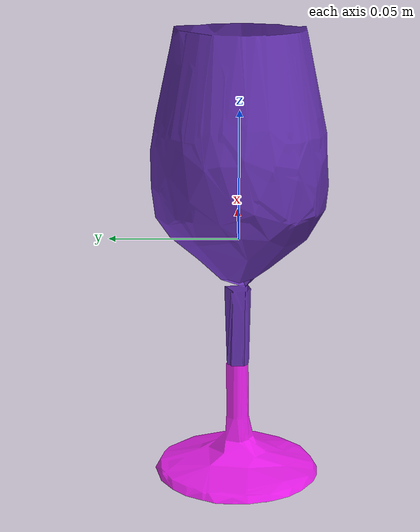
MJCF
<?xml version="1.0" encoding="utf-8"?>
<mujoco model="top_watertight_tiny">

  <asset>

    <mesh file="top_watertight_tiny.obj"/>

    <mesh file="top_watertight_tiny_collision_0.obj"/>

    <mesh file="top_watertight_tiny_collision_1.obj"/>

    <mesh file="top_watertight_tiny_collision_2.obj"/>

    <mesh file="top_watertight_tiny_collision_3.obj"/>

    <mesh file="top_watertight_tiny_collision_4.obj"/>

    <mesh file="top_watertight_tiny_collision_5.obj"/>

    <mesh file="top_watertight_tiny_collision_6.obj"/>

    <mesh file="top_watertight_tiny_collision_7.obj"/>

    <mesh file="top_watertight_tiny_collision_8.obj"/>

    <mesh file="top_watertight_tiny_collision_9.obj"/>

    <mesh file="top_watertight_tiny_collision_10.obj"/>

    <mesh file="top_watertight_tiny_collision_11.obj"/>

    <mesh file="top_watertight_tiny_collision_12.obj"/>

    <mesh file="top_watertight_tiny_collision_13.obj"/>

    <mesh file="top_watertight_tiny_collision_14.obj"/>

    <mesh file="top_watertight_tiny_collision_15.obj"/>

    <mesh file="top_watertight_tiny_collision_16.obj"/>

    <mesh file="top_watertight_tiny_collision_17.obj"/>

    <mesh file="top_watertight_tiny_collision_18.obj"/>

    <mesh file="top_watertight_tiny_collision_19.obj"/>

    <mesh file="top_watertight_tiny_collision_20.obj"/>

    <mesh file="top_watertight_tiny_collision_21.obj"/>

    <mesh file="top_watertight_tiny_collision_22.obj"/>

    <mesh file="top_watertight_tiny_collision_23.obj"/>

    <mesh file="top_watertight_tiny_collision_24.obj"/>

    <mesh file="top_watertight_tiny_collision_25.obj"/>

    <mesh file="top_watertight_tiny_collision_26.obj"/>

    <mesh file="top_watertight_tiny_collision_27.obj"/>

    <mesh file="top_watertight_tiny_collision_28.obj"/>

    <mesh file="top_watertight_tiny_collision_29.obj"/>

    <mesh file="top_watertight_tiny_collision_30.obj"/>

    <mesh file="top_watertight_tiny_collision_31.obj"/>

    <mesh file="top_watertight_tiny_collision_32.obj"/>

    <mesh file="top_watertight_tiny_collision_33.obj"/>

    <mesh file="top_watertight_tiny_collision_34.obj"/>

    <mesh file="top_watertight_tiny_collision_35.obj"/>

    <mesh file="top_watertight_tiny_collision_36.obj"/>

    <mesh file="top_watertight_tiny_collision_37.obj"/>

    <mesh file="top_watertight_tiny_collision_38.obj"/>

    <mesh file="top_watertight_tiny_collision_39.obj"/>

    <mesh file="top_watertight_tiny_collision_40.obj"/>

    <mesh file="top_watertight_tiny_collision_41.obj"/>

    <mesh file="top_watertight_tiny_collision_42.obj"/>

    <mesh file="top_watertight_tiny_collision_43.obj"/>

    <mesh file="top_watertight_tiny_collision_44.obj"/>

    <mesh file="top_watertight_tiny_collision_45.obj"/>

    <mesh file="top_watertight_tiny_collision_46.obj"/>

    <mesh file="top_watertight_tiny_collision_47.obj"/>

    <mesh file="top_watertight_tiny_collision_48.obj"/>

    <mesh file="top_watertight_tiny_collision_49.obj"/>

    <mesh file="top_watertight_tiny_collision_50.obj"/>

    <mesh file="top_watertight_tiny_collision_51.obj"/>

    <mesh file="bottom_watertight_tiny.obj"/>

    <mesh file="bottom_watertight_tiny_collision_0.obj"/>

    <mesh file="bottom_watertight_tiny_collision_1.obj"/>

    <mesh file="bottom_watertight_tiny_collision_2.obj"/>

    <mesh file="bottom_watertight_tiny_collision_3.obj"/>

    <mesh file="bottom_watertight_tiny_collision_4.obj"/>

    <mesh file="bottom_watertight_tiny_collision_5.obj"/>

    <mesh file="bottom_watertight_tiny_collision_6.obj"/>

    <mesh file="bottom_watertight_tiny_collision_7.obj"/>

    <mesh file="bottom_watertight_tiny_collision_8.obj"/>

    <mesh file="bottom_watertight_tiny_collision_9.obj"/>

    <mesh file="bottom_watertight_tiny_collision_10.obj"/>

    <mesh file="bottom_watertight_tiny_collision_11.obj"/>

    <mesh file="bottom_watertight_tiny_collision_12.obj"/>

    <mesh file="bottom_watertight_tiny_collision_13.obj"/>

    <mesh file="bottom_watertight_tiny_collision_14.obj"/>

    <mesh file="bottom_watertight_tiny_collision_15.obj"/>

    <mesh file="bottom_watertight_tiny_collision_16.obj"/>

    <mesh file="bottom_watertight_tiny_collision_17.obj"/>

    <mesh file="bottom_watertight_tiny_collision_18.obj"/>

    <mesh file="bottom_watertight_tiny_collision_19.obj"/>

    <mesh file="bottom_watertight_tiny_collision_20.obj"/>

    <mesh file="bottom_watertight_tiny_collision_21.obj"/>

    <mesh file="bottom_watertight_tiny_collision_22.obj"/>

    <mesh file="bottom_watertight_tiny_collision_23.obj"/>

    <mesh file="bottom_watertight_tiny_collision_24.obj"/>

    <mesh file="bottom_watertight_tiny_collision_25.obj"/>

    <mesh file="bottom_watertight_tiny_collision_26.obj"/>

    <mesh file="bottom_watertight_tiny_collision_27.obj"/>

    <mesh file="bottom_watertight_tiny_collision_28.obj"/>

    <mesh file="bottom_watertight_tiny_collision_29.obj"/>

    <mesh file="bottom_watertight_tiny_collision_30.obj"/>

    <mesh file="bottom_watertight_tiny_collision_31.obj"/>

    <mesh file="bottom_watertight_tiny_collision_32.obj"/>

    <mesh file="bottom_watertight_tiny_collision_33.obj"/>

    <mesh file="bottom_watertight_tiny_collision_34.obj"/>

    <mesh file="bottom_watertight_tiny_collision_35.obj"/>

    <mesh file="bottom_watertight_tiny_collision_36.obj"/>

    <mesh file="bottom_watertight_tiny_collision_37.obj"/>

    <mesh file="bottom_watertight_tiny_collision_38.obj"/>

    <mesh file="bottom_watertight_tiny_collision_39.obj"/>

    <mesh file="bottom_watertight_tiny_collision_40.obj"/>

    <mesh file="bottom_watertight_tiny_collision_41.obj"/>

    <mesh file="bottom_watertight_tiny_collision_42.obj"/>

    <mesh file="bottom_watertight_tiny_collision_43.obj"/>

    <mesh file="bottom_watertight_tiny_collision_44.obj"/>

    <mesh file="bottom_watertight_tiny_collision_45.obj"/>

    <mesh file="bottom_watertight_tiny_collision_46.obj"/>

    <mesh file="bottom_watertight_tiny_collision_47.obj"/>

    <mesh file="bottom_watertight_tiny_collision_48.obj"/>

    <mesh file="bottom_watertight_tiny_collision_49.obj"/>

    <mesh file="bottom_watertight_tiny_collision_50.obj"/>

    <mesh file="bottom_watertight_tiny_collision_51.obj"/>

    <mesh file="bottom_watertight_tiny_collision_52.obj"/>

    <mesh file="bottom_watertight_tiny_collision_53.obj"/>

    <mesh file="bottom_watertight_tiny_collision_54.obj"/>

    <mesh file="bottom_watertight_tiny_collision_55.obj"/>

    <mesh file="bottom_watertight_tiny_collision_56.obj"/>

    <mesh file="bottom_watertight_tiny_collision_57.obj"/>

    <mesh file="bottom_watertight_tiny_collision_58.obj"/>

    <mesh file="bottom_watertight_tiny_collision_59.obj"/>

    <mesh file="bottom_watertight_tiny_collision_60.obj"/>

    <mesh file="bottom_watertight_tiny_collision_61.obj"/>

    <mesh file="bottom_watertight_tiny_collision_62.obj"/>

    <mesh file="bottom_watertight_tiny_collision_63.obj"/>

    <mesh file="bottom_watertight_tiny_collision_64.obj"/>

    <mesh file="bottom_watertight_tiny_collision_65.obj"/>

  </asset>

  <worldbody>

    <body name="top_watertight_tiny">

      <freejoint/>

      <geom mesh="top_watertight_tiny" group="2" type="mesh" rgba="0.4 0.2 0.7 1" contype="0" conaffinity="0" solimp="0.90 0.95 0.001" solref="0.02 1.0" density="100" friction="0.95 0.4 0.3"/>

      <geom mesh="top_watertight_tiny_collision_0" rgba="0.6904689774517353 0.9890842779499041 0.09949597614255179 1" group="3" type="mesh" solimp="0.90 0.95 0.001" solref="0.02 1.0" density="100" friction="0.95 0.4 0.3"/>

      <geom mesh="top_watertight_tiny_collision_1" rgba="0.20717381249098255 0.18849855824066852 0.24908406799260785 1" group="3" type="mesh" solimp="0.90 0.95 0.001" solref="0.02 1.0" density="100" friction="0.95 0.4 0.3"/>

      <geom mesh="top_watertight_tiny_collision_2" rgba="0.440859379224923 0.9830569270165341 0.36981585510684134 1" group="3" type="mesh" solimp="0.90 0.95 0.001" solref="0.02 1.0" density="100" friction="0.95 0.4 0.3"/>

      <geom mesh="top_watertight_tiny_collision_3" rgba="0.291212882244426 0.09450013191835704 0.7182321906929979 1" group="3" type="mesh" solimp="0.90 0.95 0.001" solref="0.02 1.0" density="100" friction="0.95 0.4 0.3"/>

      <geom mesh="top_watertight_tiny_collision_4" rgba="0.21123881625625773 0.8996467632661002 0.07170441287094398 1" group="3" type="mesh" solimp="0.90 0.95 0.001" solref="0.02 1.0" density="100" friction="0.95 0.4 0.3"/>

      <geom mesh="top_watertight_tiny_collision_5" rgba="0.7135981555732481 0.9014954097794105 0.11325771074249136 1" group="3" type="mesh" solimp="0.90 0.95 0.001" solref="0.02 1.0" density="100" friction="0.95 0.4 0.3"/>

      <geom mesh="top_watertight_tiny_collision_6" rgba="0.7591167061416585 0.3238434258883003 0.7082786691735463 1" group="3" type="mesh" solimp="0.90 0.95 0.001" solref="0.02 1.0" density="100" friction="0.95 0.4 0.3"/>

      <geom mesh="top_watertight_tiny_collision_7" rgba="0.04004939632796911 0.28726323842490586 0.5389506837299923 1" group="3" type="mesh" solimp="0.90 0.95 0.001" solref="0.02 1.0" density="100" friction="0.95 0.4 0.3"/>

      <geom mesh="top_watertight_tiny_collision_8" rgba="0.18368826423979978 0.5944400065796317 0.930681193947245 1" group="3" type="mesh" solimp="0.90 0.95 0.001" solref="0.02 1.0" density="100" friction="0.95 0.4 0.3"/>

      <geom mesh="top_watertight_tiny_collision_9" rgba="0.24048566638288127 0.2293011616281444 0.4521122085611543 1" group="3" type="mesh" solimp="0.90 0.95 0.001" solref="0.02 1.0" density="100" friction="0.95 0.4 0.3"/>

      <geom mesh="top_watertight_tiny_collision_10" rgba="0.6512256286445702 0.42669877651200216 0.3921145363146994 1" group="3" type="mesh" solimp="0.90 0.95 0.001" solref="0.02 1.0" density="100" friction="0.95 0.4 0.3"/>

      <geom mesh="top_watertight_tiny_collision_11" rgba="0.16277900444721904 0.5695508040449854 0.7692021096108951 1" group="3" type="mesh" solimp="0.90 0.95 0.001" solref="0.02 1.0" density="100" friction="0.95 0.4 0.3"/>

      <geom mesh="top_watertight_tiny_collision_12" rgba="0.7158997331469885 0.5149857598872699 0.9976523581776857 1" group="3" type="mesh" solimp="0.90 0.95 0.001" solref="0.02 1.0" density="100" friction="0.95 0.4 0.3"/>

      <geom mesh="top_watertight_tiny_collision_13" rgba="0.15551992363586775 0.3790410827160491 0.5456054320322961 1" group="3" type="mesh" solimp="0.90 0.95 0.001" solref="0.02 1.0" density="100" friction="0.95 0.4 0.3"/>

      <geom mesh="top_watertight_tiny_collision_14" rgba="0.8224079835110917 0.6821161050280695 0.2385056042041458 1" group="3" type="mesh" solimp="0.90 0.95 0.001" solref="0.02 1.0" density="100" friction="0.95 0.4 0.3"/>

      <geom mesh="top_watertight_tiny_collision_15" rgba="0.9296863934149605 0.9984860444341328 0.3481639335018697 1" group="3" type="mesh" solimp="0.90 0.95 0.001" solref="0.02 1.0" density="100" friction="0.95 0.4 0.3"/>

      <geom mesh="top_watertight_tiny_collision_16" rgba="0.24490772738945032 0.31643401161728424 0.6398526459120216 1" group="3" type="mesh" solimp="0.90 0.95 0.001" solref="0.02 1.0" density="100" friction="0.95 0.4 0.3"/>

      <geom mesh="top_watertight_tiny_collision_17" rgba="0.08794449227038448 0.9242495945313735 0.7563222501650175 1" group="3" type="mesh" solimp="0.90 0.95 0.001" solref="0.02 1.0" density="100" friction="0.95 0.4 0.3"/>

      <geom mesh="top_watertight_tiny_collision_18" rgba="0.7550837154238529 0.8367604318344449 0.785682723329208 1" group="3" type="mesh" solimp="0.90 0.95 0.001" solref="0.02 1.0" density="100" friction="0.95 0.4 0.3"/>

      <geom mesh="top_watertight_tiny_collision_19" rgba="0.3702593651986552 0.5649525319418951 0.6951867447934799 1" group="3" type="mesh" solimp="0.90 0.95 0.001" solref="0.02 1.0" density="100" friction="0.95 0.4 0.3"/>

      <geom mesh="top_watertight_tiny_collision_20" rgba="0.5532840347397743 0.5624670803242385 0.27658860449583955 1" group="3" type="mesh" solimp="0.90 0.95 0.001" solref="0.02 1.0" density="100" friction="0.95 0.4 0.3"/>

      <geom mesh="top_watertight_tiny_collision_21" rgba="0.6262297093045662 0.6451839441605068 0.9544950443549879 1" group="3" type="mesh" solimp="0.90 0.95 0.001" solref="0.02 1.0" density="100" friction="0.95 0.4 0.3"/>

      <geom mesh="top_watertight_tiny_collision_22" rgba="0.03630275139534833 0.07433219771691979 0.9260854462874198 1" group="3" type="mesh" solimp="0.90 0.95 0.001" solref="0.02 1.0" density="100" friction="0.95 0.4 0.3"/>

      <geom mesh="top_watertight_tiny_collision_23" rgba="0.4945248157584413 0.2559977848004854 0.9090307564474931 1" group="3" type="mesh" solimp="0.90 0.95 0.001" solref="0.02 1.0" density="100" friction="0.95 0.4 0.3"/>

      <geom mesh="top_watertight_tiny_collision_24" rgba="0.2424732581294783 0.1955964024479977 0.9178515211330457 1" group="3" type="mesh" solimp="0.90 0.95 0.001" solref="0.02 1.0" density="100" friction="0.95 0.4 0.3"/>

      <geom mesh="top_watertight_tiny_collision_25" rgba="0.43058780105960404 0.0964721141225513 0.8410931652334637 1" group="3" type="mesh" solimp="0.90 0.95 0.001" solref="0.02 1.0" density="100" friction="0.95 0.4 0.3"/>

      <geom mesh="top_watertight_tiny_collision_26" rgba="0.5364980899837714 0.9620002418342933 0.5346442291946701 1" group="3" type="mesh" solimp="0.90 0.95 0.001" solref="0.02 1.0" density="100" friction="0.95 0.4 0.3"/>

      <geom mesh="top_watertight_tiny_collision_27" rgba="0.8702204167067742 0.11283553761515286 0.8935103517532219 1" group="3" type="mesh" solimp="0.90 0.95 0.001" solref="0.02 1.0" density="100" friction="0.95 0.4 0.3"/>

      <geom mesh="top_watertight_tiny_collision_28" rgba="0.6800940259561571 0.27017689498009 0.7579429982866561 1" group="3" type="mesh" solimp="0.90 0.95 0.001" solref="0.02 1.0" density="100" friction="0.95 0.4 0.3"/>

      <geom mesh="top_watertight_tiny_collision_29" rgba="0.3730037247971182 0.4464181674580233 0.42621125664929405 1" group="3" type="mesh" solimp="0.90 0.95 0.001" solref="0.02 1.0" density="100" friction="0.95 0.4 0.3"/>

      <geom mesh="top_watertight_tiny_collision_30" rgba="0.3787832087519072 0.5218897918631809 0.5581832773519496 1" group="3" type="mesh" solimp="0.90 0.95 0.001" solref="0.02 1.0" density="100" friction="0.95 0.4 0.3"/>

      <geom mesh="top_watertight_tiny_collision_31" rgba="0.30969358717550066 0.1133592165548617 0.887557750156526 1" group="3" type="mesh" solimp="0.90 0.95 0.001" solref="0.02 1.0" density="100" friction="0.95 0.4 0.3"/>

      <geom mesh="top_watertight_tiny_collision_32" rgba="0.5542964581733533 0.16867086736270154 0.28405763126455574 1" group="3" type="mesh" solimp="0.90 0.95 0.001" solref="0.02 1.0" density="100" friction="0.95 0.4 0.3"/>

      <geom mesh="top_watertight_tiny_collision_33" rgba="0.6975404435265781 0.8786163879153178 0.9617720184524395 1" group="3" type="mesh" solimp="0.90 0.95 0.001" solref="0.02 1.0" density="100" friction="0.95 0.4 0.3"/>

      <geom mesh="top_watertight_tiny_collision_34" rgba="0.7379994263631419 0.8969369989603164 0.8330125683777921 1" group="3" type="mesh" solimp="0.90 0.95 0.001" solref="0.02 1.0" density="100" friction="0.95 0.4 0.3"/>

      <geom mesh="top_watertight_tiny_collision_35" rgba="0.6408112447943736 0.8809250698499326 0.3055939117131984 1" group="3" type="mesh" solimp="0.90 0.95 0.001" solref="0.02 1.0" density="100" friction="0.95 0.4 0.3"/>

      <geom mesh="top_watertight_tiny_collision_36" rgba="0.9581427563081736 0.9963308803059672 0.4289479534283629 1" group="3" type="mesh" solimp="0.90 0.95 0.001" solref="0.02 1.0" density="100" friction="0.95 0.4 0.3"/>

      <geom mesh="top_watertight_tiny_collision_37" rgba="0.18425004595838046 0.3345157422176043 0.4044812439374973 1" group="3" type="mesh" solimp="0.90 0.95 0.001" solref="0.02 1.0" density="100" friction="0.95 0.4 0.3"/>

      <geom mesh="top_watertight_tiny_collision_38" rgba="0.07953034823107785 0.42043172230033643 0.47293426328209875 1" group="3" type="mesh" solimp="0.90 0.95 0.001" solref="0.02 1.0" density="100" friction="0.95 0.4 0.3"/>

      <geom mesh="top_watertight_tiny_collision_39" rgba="0.0191164015221571 0.5485602122953134 0.37781664066464093 1" group="3" type="mesh" solimp="0.90 0.95 0.001" solref="0.02 1.0" density="100" friction="0.95 0.4 0.3"/>

      <geom mesh="top_watertight_tiny_collision_40" rgba="0.5798288326117634 0.8700334817525227 0.16117887036531164 1" group="3" type="mesh" solimp="0.90 0.95 0.001" solref="0.02 1.0" density="100" friction="0.95 0.4 0.3"/>

      <geom mesh="top_watertight_tiny_collision_41" rgba="0.5197662873983837 0.2623361975509999 0.9023706097884123 1" group="3" type="mesh" solimp="0.90 0.95 0.001" solref="0.02 1.0" density="100" friction="0.95 0.4 0.3"/>

      <geom mesh="top_watertight_tiny_collision_42" rgba="0.6325563756334056 0.4297217064963207 0.6912984104312961 1" group="3" type="mesh" solimp="0.90 0.95 0.001" solref="0.02 1.0" density="100" friction="0.95 0.4 0.3"/>

      <geom mesh="top_watertight_tiny_collision_43" rgba="0.5557096606297367 0.39995831573970364 0.5448112443252793 1" group="3" type="mesh" solimp="0.90 0.95 0.001" solref="0.02 1.0" density="100" friction="0.95 0.4 0.3"/>

      <geom mesh="top_watertight_tiny_collision_44" rgba="0.650211947174801 0.8688523328212309 0.9809933425965481 1" group="3" type="mesh" solimp="0.90 0.95 0.001" solref="0.02 1.0" density="100" friction="0.95 0.4 0.3"/>

      <geom mesh="top_watertight_tiny_collision_45" rgba="0.38380259836308595 0.025110086906677043 0.398230777206835 1" group="3" type="mesh" solimp="0.90 0.95 0.001" solref="0.02 1.0" density="100" friction="0.95 0.4 0.3"/>

      <geom mesh="top_watertight_tiny_collision_46" rgba="0.2410766019574434 0.5978889536051465 0.4028412978831627 1" group="3" type="mesh" solimp="0.90 0.95 0.001" solref="0.02 1.0" density="100" friction="0.95 0.4 0.3"/>

      <geom mesh="top_watertight_tiny_collision_47" rgba="0.8559711954619551 0.3058445698990788 0.39048756892749426 1" group="3" type="mesh" solimp="0.90 0.95 0.001" solref="0.02 1.0" density="100" friction="0.95 0.4 0.3"/>

      <geom mesh="top_watertight_tiny_collision_48" rgba="0.31295300952013105 0.9579661183922655 0.1755050288041906 1" group="3" type="mesh" solimp="0.90 0.95 0.001" solref="0.02 1.0" density="100" friction="0.95 0.4 0.3"/>

      <geom mesh="top_watertight_tiny_collision_49" rgba="0.035797642619801895 0.8000821952877026 0.02416966809031229 1" group="3" type="mesh" solimp="0.90 0.95 0.001" solref="0.02 1.0" density="100" friction="0.95 0.4 0.3"/>

      <geom mesh="top_watertight_tiny_collision_50" rgba="0.5276476180759115 0.057094808515037676 0.629926011525558 1" group="3" type="mesh" solimp="0.90 0.95 0.001" solref="0.02 1.0" density="100" friction="0.95 0.4 0.3"/>

      <geom mesh="top_watertight_tiny_collision_51" rgba="0.7782968621714623 0.2124044693784456 0.7989907620067174 1" group="3" type="mesh" solimp="0.90 0.95 0.001" solref="0.02 1.0" density="100" friction="0.95 0.4 0.3"/>

      <body name="bottom_watertight_tiny">

        <geom mesh="bottom_watertight_tiny" group="2" type="mesh" rgba="1 0 1 0.8" contype="0" conaffinity="0" solimp="0.90 0.95 0.001" solref="0.02 1.0" density="100" friction="0.95 0.4 0.3"/>

        <geom mesh="bottom_watertight_tiny_collision_0" rgba="0.9962569477734042 0.8066480682177519 0.6686405924824983 1" group="3" type="mesh" solimp="0.90 0.95 0.001" solref="0.02 1.0" density="100" friction="0.95 0.4 0.3"/>

        <geom mesh="bottom_watertight_tiny_collision_1" rgba="0.31734877190139765 0.1189325287899633 0.20650476783541638 1" group="3" type="mesh" solimp="0.90 0.95 0.001" solref="0.02 1.0" density="100" friction="0.95 0.4 0.3"/>

        <geom mesh="bottom_watertight_tiny_collision_2" rgba="0.8244473662774056 0.24909917485713617 0.5725059873602617 1" group="3" type="mesh" solimp="0.90 0.95 0.001" solref="0.02 1.0" density="100" friction="0.95 0.4 0.3"/>

        <geom mesh="bottom_watertight_tiny_collision_3" rgba="0.07975676630974915 0.15289833414990361 0.45608170503800194 1" group="3" type="mesh" solimp="0.90 0.95 0.001" solref="0.02 1.0" density="100" friction="0.95 0.4 0.3"/>

        <geom mesh="bottom_watertight_tiny_collision_4" rgba="0.6105854151367517 0.4808770557319294 0.39148868037363027 1" group="3" type="mesh" solimp="0.90 0.95 0.001" solref="0.02 1.0" density="100" friction="0.95 0.4 0.3"/>

        <geom mesh="bottom_watertight_tiny_collision_5" rgba="0.29578850074017105 0.34274204501428973 0.9172875214987747 1" group="3" type="mesh" solimp="0.90 0.95 0.001" solref="0.02 1.0" density="100" friction="0.95 0.4 0.3"/>

        <geom mesh="bottom_watertight_tiny_collision_6" rgba="0.7137693915548934 0.8072070049067954 0.10201141113153334 1" group="3" type="mesh" solimp="0.90 0.95 0.001" solref="0.02 1.0" density="100" friction="0.95 0.4 0.3"/>

        <geom mesh="bottom_watertight_tiny_collision_7" rgba="0.8590167273731287 0.2837529832781187 0.3870046545111394 1" group="3" type="mesh" solimp="0.90 0.95 0.001" solref="0.02 1.0" density="100" friction="0.95 0.4 0.3"/>

        <geom mesh="bottom_watertight_tiny_collision_8" rgba="0.9910738082611509 0.7140240299571866 0.4928934836492105 1" group="3" type="mesh" solimp="0.90 0.95 0.001" solref="0.02 1.0" density="100" friction="0.95 0.4 0.3"/>

        <geom mesh="bottom_watertight_tiny_collision_9" rgba="0.7509919515852057 0.22587925291164268 0.8788919992977293 1" group="3" type="mesh" solimp="0.90 0.95 0.001" solref="0.02 1.0" density="100" friction="0.95 0.4 0.3"/>

        <geom mesh="bottom_watertight_tiny_collision_10" rgba="0.14202112231302177 0.5512224120584904 0.9539058577078223 1" group="3" type="mesh" solimp="0.90 0.95 0.001" solref="0.02 1.0" density="100" friction="0.95 0.4 0.3"/>

        <geom mesh="bottom_watertight_tiny_collision_11" rgba="0.1796433926847787 0.9592855538151404 0.0564767290544238 1" group="3" type="mesh" solimp="0.90 0.95 0.001" solref="0.02 1.0" density="100" friction="0.95 0.4 0.3"/>

        <geom mesh="bottom_watertight_tiny_collision_12" rgba="0.8682982871476608 0.466665015111405 0.9577845131828633 1" group="3" type="mesh" solimp="0.90 0.95 0.001" solref="0.02 1.0" density="100" friction="0.95 0.4 0.3"/>

        <geom mesh="bottom_watertight_tiny_collision_13" rgba="0.7429420979316687 0.32736317581196606 0.755398454904709 1" group="3" type="mesh" solimp="0.90 0.95 0.001" solref="0.02 1.0" density="100" friction="0.95 0.4 0.3"/>

        <geom mesh="bottom_watertight_tiny_collision_14" rgba="0.889286735914576 0.2115061489422052 0.1625405540984416 1" group="3" type="mesh" solimp="0.90 0.95 0.001" solref="0.02 1.0" density="100" friction="0.95 0.4 0.3"/>

        <geom mesh="bottom_watertight_tiny_collision_15" rgba="0.7501815050545175 0.816082243830873 0.05033803313266072 1" group="3" type="mesh" solimp="0.90 0.95 0.001" solref="0.02 1.0" density="100" friction="0.95 0.4 0.3"/>

        <geom mesh="bottom_watertight_tiny_collision_16" rgba="0.31211919171273617 0.25238275260032383 0.8787252079018281 1" group="3" type="mesh" solimp="0.90 0.95 0.001" solref="0.02 1.0" density="100" friction="0.95 0.4 0.3"/>

        <geom mesh="bottom_watertight_tiny_collision_17" rgba="0.6902777559402118 0.6875698245865738 0.8370164678009211 1" group="3" type="mesh" solimp="0.90 0.95 0.001" solref="0.02 1.0" density="100" friction="0.95 0.4 0.3"/>

        <geom mesh="bottom_watertight_tiny_collision_18" rgba="0.8062382179214644 0.3819744495373174 0.49715119649704775 1" group="3" type="mesh" solimp="0.90 0.95 0.001" solref="0.02 1.0" density="100" friction="0.95 0.4 0.3"/>

        <geom mesh="bottom_watertight_tiny_collision_19" rgba="0.2697551475335753 0.17241825477202055 0.42419434471182293 1" group="3" type="mesh" solimp="0.90 0.95 0.001" solref="0.02 1.0" density="100" friction="0.95 0.4 0.3"/>

        <geom mesh="bottom_watertight_tiny_collision_20" rgba="0.5119561675881109 0.14263333423500668 0.9560964499554899 1" group="3" type="mesh" solimp="0.90 0.95 0.001" solref="0.02 1.0" density="100" friction="0.95 0.4 0.3"/>

        <geom mesh="bottom_watertight_tiny_collision_21" rgba="0.4112601854735697 0.8983000148000984 0.8808393086380301 1" group="3" type="mesh" solimp="0.90 0.95 0.001" solref="0.02 1.0" density="100" friction="0.95 0.4 0.3"/>

        <geom mesh="bottom_watertight_tiny_collision_22" rgba="0.7133366680025944 0.3553633608942669 0.8218102966300512 1" group="3" type="mesh" solimp="0.90 0.95 0.001" solref="0.02 1.0" density="100" friction="0.95 0.4 0.3"/>

        <geom mesh="bottom_watertight_tiny_collision_23" rgba="0.6603077002391367 0.3326922659328134 0.23593761702297378 1" group="3" type="mesh" solimp="0.90 0.95 0.001" solref="0.02 1.0" density="100" friction="0.95 0.4 0.3"/>

        <geom mesh="bottom_watertight_tiny_collision_24" rgba="0.24789125538950885 0.6509967049502187 0.5068561680628352 1" group="3" type="mesh" solimp="0.90 0.95 0.001" solref="0.02 1.0" density="100" friction="0.95 0.4 0.3"/>

        <geom mesh="bottom_watertight_tiny_collision_25" rgba="0.26876618279193365 0.552272878250663 0.5209657369838778 1" group="3" type="mesh" solimp="0.90 0.95 0.001" solref="0.02 1.0" density="100" friction="0.95 0.4 0.3"/>

        <geom mesh="bottom_watertight_tiny_collision_26" rgba="0.1487976457900414 0.8433287595434894 0.438132467130423 1" group="3" type="mesh" solimp="0.90 0.95 0.001" solref="0.02 1.0" density="100" friction="0.95 0.4 0.3"/>

        <geom mesh="bottom_watertight_tiny_collision_27" rgba="0.31766905945550916 0.8221661385015171 0.8316747532639305 1" group="3" type="mesh" solimp="0.90 0.95 0.001" solref="0.02 1.0" density="100" friction="0.95 0.4 0.3"/>

        <geom mesh="bottom_watertight_tiny_collision_28" rgba="0.8766822514828317 0.35571360532474483 0.16264140066628663 1" group="3" type="mesh" solimp="0.90 0.95 0.001" solref="0.02 1.0" density="100" friction="0.95 0.4 0.3"/>

        <geom mesh="bottom_watertight_tiny_collision_29" rgba="0.35444526775121266 0.8353760533697981 0.7992743652555931 1" group="3" type="mesh" solimp="0.90 0.95 0.001" solref="0.02 1.0" density="100" friction="0.95 0.4 0.3"/>

        <geom mesh="bottom_watertight_tiny_collision_30" rgba="0.14561766000697618 0.5630561397835574 0.46048733129217145 1" group="3" type="mesh" solimp="0.90 0.95 0.001" solref="0.02 1.0" density="100" friction="0.95 0.4 0.3"/>

        <geom mesh="bottom_watertight_tiny_collision_31" rgba="0.17425431171915617 0.37471143015157293 0.126176647686717 1" group="3" type="mesh" solimp="0.90 0.95 0.001" solref="0.02 1.0" density="100" friction="0.95 0.4 0.3"/>

        <geom mesh="bottom_watertight_tiny_collision_32" rgba="0.7605327940204535 0.3768449459325601 0.3912831239999057 1" group="3" type="mesh" solimp="0.90 0.95 0.001" solref="0.02 1.0" density="100" friction="0.95 0.4 0.3"/>

        <geom mesh="bottom_watertight_tiny_collision_33" rgba="0.18400728253010523 0.21106594141829293 0.7795159238911767 1" group="3" type="mesh" solimp="0.90 0.95 0.001" solref="0.02 1.0" density="100" friction="0.95 0.4 0.3"/>

        <geom mesh="bottom_watertight_tiny_collision_34" rgba="0.634708987497065 0.37441174657556664 0.2331149812473332 1" group="3" type="mesh" solimp="0.90 0.95 0.001" solref="0.02 1.0" density="100" friction="0.95 0.4 0.3"/>

        <geom mesh="bottom_watertight_tiny_collision_35" rgba="0.21247439442060134 0.7297729558421637 0.025969402555301557 1" group="3" type="mesh" solimp="0.90 0.95 0.001" solref="0.02 1.0" density="100" friction="0.95 0.4 0.3"/>

        <geom mesh="bottom_watertight_tiny_collision_36" rgba="0.5391128708271599 0.8653871524938043 0.7918106116588536 1" group="3" type="mesh" solimp="0.90 0.95 0.001" solref="0.02 1.0" density="100" friction="0.95 0.4 0.3"/>

        <geom mesh="bottom_watertight_tiny_collision_37" rgba="0.6402119272040747 0.8200314209697853 0.33691091734801826 1" group="3" type="mesh" solimp="0.90 0.95 0.001" solref="0.02 1.0" density="100" friction="0.95 0.4 0.3"/>

        <geom mesh="bottom_watertight_tiny_collision_38" rgba="0.6199324560747321 0.5571162268527196 0.4777212827075046 1" group="3" type="mesh" solimp="0.90 0.95 0.001" solref="0.02 1.0" density="100" friction="0.95 0.4 0.3"/>

        <geom mesh="bottom_watertight_tiny_collision_39" rgba="0.36117857192214187 0.7879127977682112 0.5787351136373968 1" group="3" type="mesh" solimp="0.90 0.95 0.001" solref="0.02 1.0" density="100" friction="0.95 0.4 0.3"/>

        <geom mesh="bottom_watertight_tiny_collision_40" rgba="0.8456011312566082 0.6896246947573402 0.9203092227917052 1" group="3" type="mesh" solimp="0.90 0.95 0.001" solref="0.02 1.0" density="100" friction="0.95 0.4 0.3"/>

        <geom mesh="bottom_watertight_tiny_collision_41" rgba="0.34649135231197303 0.23410493974870883 0.5315786705753968 1" group="3" type="mesh" solimp="0.90 0.95 0.001" solref="0.02 1.0" density="100" friction="0.95 0.4 0.3"/>

        <geom mesh="bottom_watertight_tiny_collision_42" rgba="0.23404275042068867 0.30766355046520766 0.8133604535434111 1" group="3" type="mesh" solimp="0.90 0.95 0.001" solref="0.02 1.0" density="100" friction="0.95 0.4 0.3"/>

        <geom mesh="bottom_watertight_tiny_collision_43" rgba="0.4869179093077831 0.7487025383497595 0.5782119779714335 1" group="3" type="mesh" solimp="0.90 0.95 0.001" solref="0.02 1.0" density="100" friction="0.95 0.4 0.3"/>

        <geom mesh="bottom_watertight_tiny_collision_44" rgba="0.46693518215003516 0.034454992655102545 0.9218129869877636 1" group="3" type="mesh" solimp="0.90 0.95 0.001" solref="0.02 1.0" density="100" friction="0.95 0.4 0.3"/>

        <geom mesh="bottom_watertight_tiny_collision_45" rgba="0.922310624999407 0.20904534386212448 0.8387881235315285 1" group="3" type="mesh" solimp="0.90 0.95 0.001" solref="0.02 1.0" density="100" friction="0.95 0.4 0.3"/>

        <geom mesh="bottom_watertight_tiny_collision_46" rgba="0.13791724039748965 0.7353020158492746 0.31266067108134066 1" group="3" type="mesh" solimp="0.90 0.95 0.001" solref="0.02 1.0" density="100" friction="0.95 0.4 0.3"/>

        <geom mesh="bottom_watertight_tiny_collision_47" rgba="0.867472702499302 0.15073572949732483 0.31520885666081455 1" group="3" type="mesh" solimp="0.90 0.95 0.001" solref="0.02 1.0" density="100" friction="0.95 0.4 0.3"/>

        <geom mesh="bottom_watertight_tiny_collision_48" rgba="0.39528448245827075 0.784079908420963 0.15468166409526607 1" group="3" type="mesh" solimp="0.90 0.95 0.001" solref="0.02 1.0" density="100" friction="0.95 0.4 0.3"/>

        <geom mesh="bottom_watertight_tiny_collision_49" rgba="0.7570378101157309 0.3307826906041138 0.5061020727105162 1" group="3" type="mesh" solimp="0.90 0.95 0.001" solref="0.02 1.0" density="100" friction="0.95 0.4 0.3"/>

        <geom mesh="bottom_watertight_tiny_collision_50" rgba="0.8438241854538191 0.903784747406149 0.48638859121345057 1" group="3" type="mesh" solimp="0.90 0.95 0.001" solref="0.02 1.0" density="100" friction="0.95 0.4 0.3"/>

        <geom mesh="bottom_watertight_tiny_collision_51" rgba="0.5376522098147378 0.5686890093652293 0.5107140453462657 1" group="3" type="mesh" solimp="0.90 0.95 0.001" solref="0.02 1.0" density="100" friction="0.95 0.4 0.3"/>

        <geom mesh="bottom_watertight_tiny_collision_52" rgba="0.7831694969564892 0.06601234584665028 0.982934306736256 1" group="3" type="mesh" solimp="0.90 0.95 0.001" solref="0.02 1.0" density="100" friction="0.95 0.4 0.3"/>

        <geom mesh="bottom_watertight_tiny_collision_53" rgba="0.09129034144634762 0.1560280231766733 0.13892228848847632 1" group="3" type="mesh" solimp="0.90 0.95 0.001" solref="0.02 1.0" density="100" friction="0.95 0.4 0.3"/>

        <geom mesh="bottom_watertight_tiny_collision_54" rgba="0.8193613411802736 0.8734519033152978 0.956091693861642 1" group="3" type="mesh" solimp="0.90 0.95 0.001" solref="0.02 1.0" density="100" friction="0.95 0.4 0.3"/>

        <geom mesh="bottom_watertight_tiny_collision_55" rgba="0.5188524366663382 0.1125768519029593 0.4425383102608075 1" group="3" type="mesh" solimp="0.90 0.95 0.001" solref="0.02 1.0" density="100" friction="0.95 0.4 0.3"/>

        <geom mesh="bottom_watertight_tiny_collision_56" rgba="0.5673594288961452 0.29229877369882573 0.35722055560389854 1" group="3" type="mesh" solimp="0.90 0.95 0.001" solref="0.02 1.0" density="100" friction="0.95 0.4 0.3"/>

        <geom mesh="bottom_watertight_tiny_collision_57" rgba="0.21170370380754922 0.9840840375482195 0.3026719272331927 1" group="3" type="mesh" solimp="0.90 0.95 0.001" solref="0.02 1.0" density="100" friction="0.95 0.4 0.3"/>

        <geom mesh="bottom_watertight_tiny_collision_58" rgba="0.19667663838875593 0.9199887902958671 0.7244282192974864 1" group="3" type="mesh" solimp="0.90 0.95 0.001" solref="0.02 1.0" density="100" friction="0.95 0.4 0.3"/>

        <geom mesh="bottom_watertight_tiny_collision_59" rgba="0.7382435181813374 0.538562369076099 0.7853917188664797 1" group="3" type="mesh" solimp="0.90 0.95 0.001" solref="0.02 1.0" density="100" friction="0.95 0.4 0.3"/>

        <geom mesh="bottom_watertight_tiny_collision_60" rgba="0.34985816242563916 0.2900093206805746 0.5537952191922257 1" group="3" type="mesh" solimp="0.90 0.95 0.001" solref="0.02 1.0" density="100" friction="0.95 0.4 0.3"/>

        <geom mesh="bottom_watertight_tiny_collision_61" rgba="0.061733280430528725 0.7651499874763622 0.3869330231003244 1" group="3" type="mesh" solimp="0.90 0.95 0.001" solref="0.02 1.0" density="100" friction="0.95 0.4 0.3"/>

        <geom mesh="bottom_watertight_tiny_collision_62" rgba="0.19646350809050583 0.5164790388838729 0.9839068412456574 1" group="3" type="mesh" solimp="0.90 0.95 0.001" solref="0.02 1.0" density="100" friction="0.95 0.4 0.3"/>

        <geom mesh="bottom_watertight_tiny_collision_63" rgba="0.3818310338181481 0.4922904919694926 0.09161233419294401 1" group="3" type="mesh" solimp="0.90 0.95 0.001" solref="0.02 1.0" density="100" friction="0.95 0.4 0.3"/>

        <geom mesh="bottom_watertight_tiny_collision_64" rgba="0.8373385155635107 0.7883054908254215 0.17378744671306834 1" group="3" type="mesh" solimp="0.90 0.95 0.001" solref="0.02 1.0" density="100" friction="0.95 0.4 0.3"/>

        <geom mesh="bottom_watertight_tiny_collision_65" rgba="0.41936741587232784 0.652324407703868 0.49818435970922437 1" group="3" type="mesh" solimp="0.90 0.95 0.001" solref="0.02 1.0" density="100" friction="0.95 0.4 0.3"/>

        <site name="bottom_watertight_tiny_touch_site" pos="0 0 0" size="0.2" rgba="1 0 0 0." type="sphere"/>
      </body>

      <site name="top_watertight_tiny_touch_site" pos="0 0 0" size="0.2" rgba="1 0 0 0." type="sphere"/>
    </body>

  </worldbody>

  <sensor>
    <touch name="top_watertight_tiny_touch" site="top_watertight_tiny_touch_site"/>
    <touch name="bottom_watertight_tiny_touch" site="bottom_watertight_tiny_touch_site"/>
  </sensor>
</mujoco>
